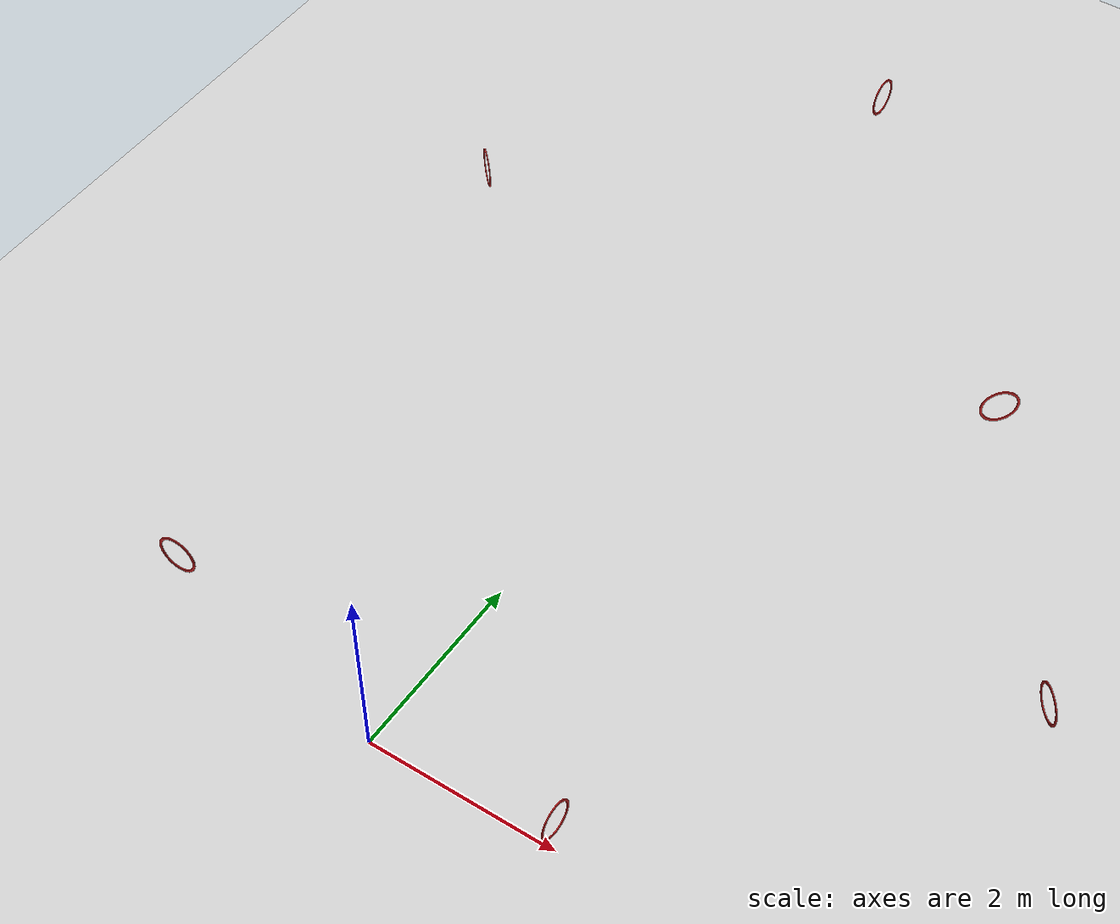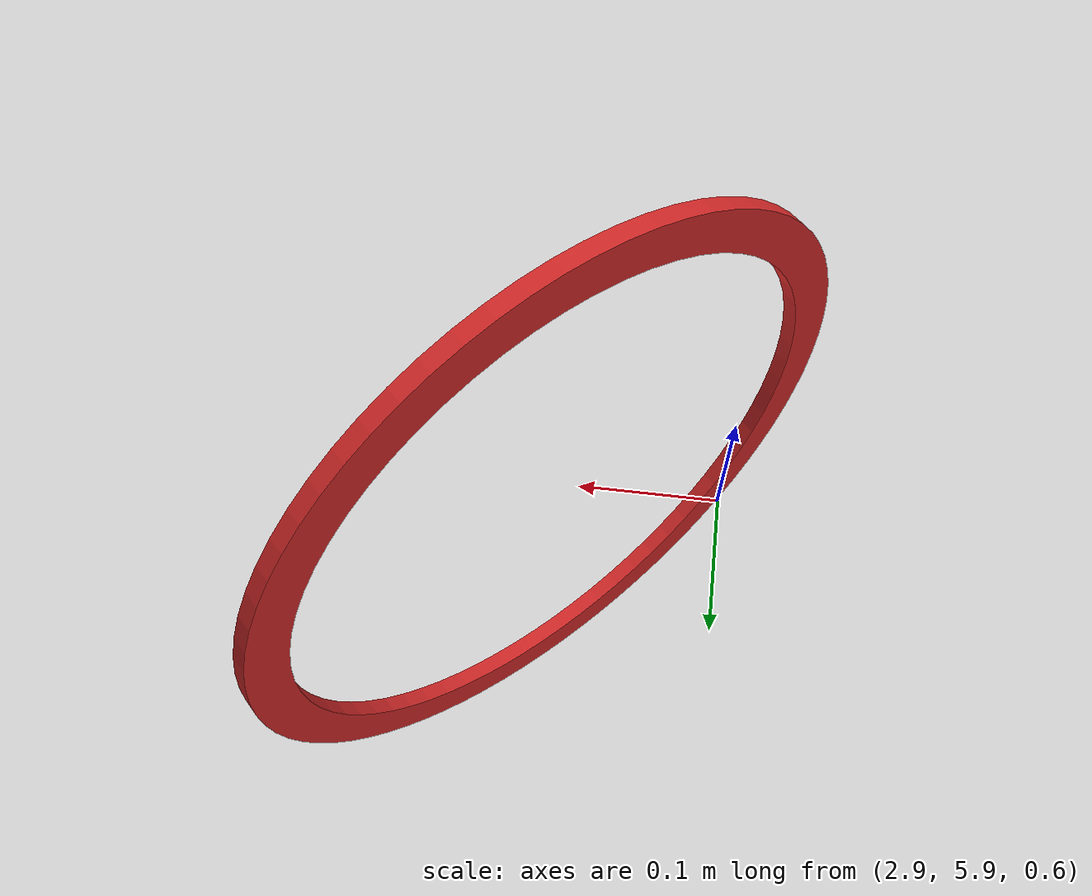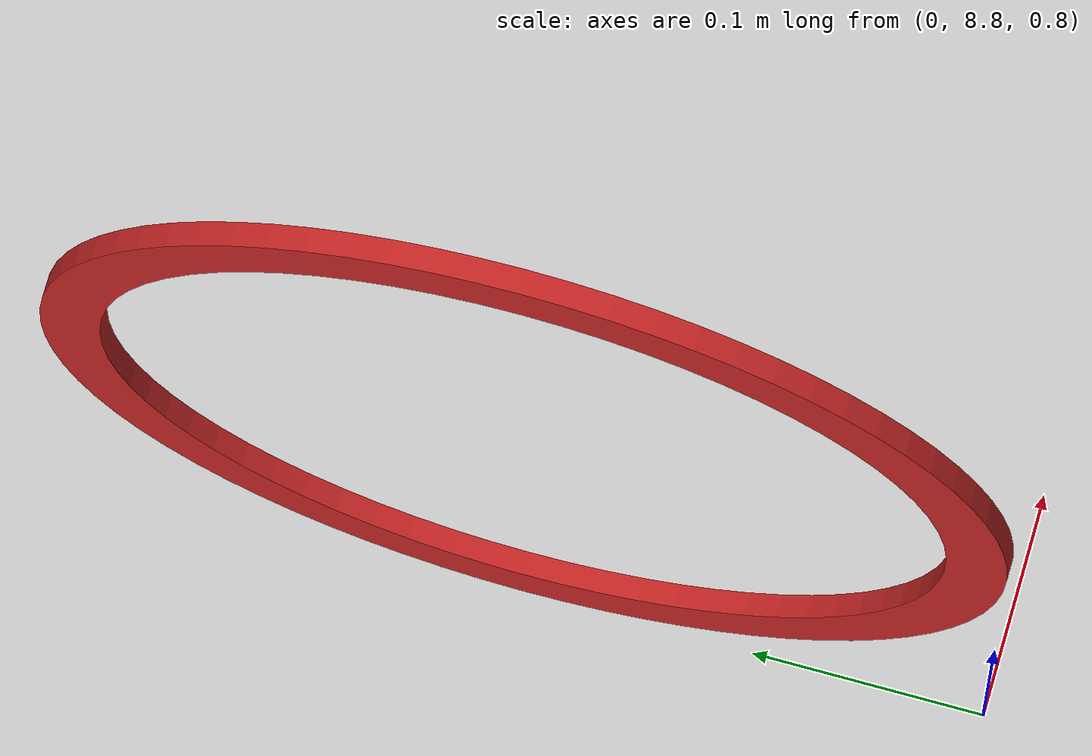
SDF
<?xml version="1.0"?>
<sdf version="1.4">
  <world name="default">
    <gui>
      <camera name="user_cam">
        <pose>-7.84 3.45 8.12 0 0.74 0</pose>
      </camera>
    </gui>

    <include>
      <uri>model://ground_plane</uri>
    </include>

    <include>
      <uri>model://sun</uri>
    </include>

    <include>
      <name>Gate_1</name>
      <pose>2 0 0.5 0 1.57 0</pose>
      <uri>model://gate</uri>
    </include>

    <include>
      <name>Gate_2</name>
      <pose>5 3 1 0 1.57 0.79</pose>
      <uri>model://gate</uri>
    </include>

    <include>
      <name>Gate_3</name>
      <pose>3 6 0.75 0 1.57 -0.79</pose>
      <uri>model://gate</uri>
    </include>

    <include>
      <name>Gate_4</name>
      <pose>0 9 1 0 1.57 0</pose>
      <uri>model://gate</uri>
    </include>

    <include>
      <name>Gate_5</name>
      <pose>-3 6 0.75 0 1.57 0.79</pose>
      <uri>model://gate</uri>
    </include>

    <include>
      <name>Gate_6</name>
      <pose>-2 0 1.25 0 1.57 1.57</pose>
      <uri>model://gate</uri>
    </include>
  </world>
</sdf>

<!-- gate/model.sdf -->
<sdf version="1.4">
  <model name="gate">
    <static>true</static>
    <link name="gate">
      <visual name="visual">
        <geometry>
          <mesh>
            <uri>model://gate/mesh/Gate.stl</uri>
            <scale>0.001 0.001 0.001</scale>
          </mesh>
        </geometry>
        <material>
          <script>
            <uri>file://media/materials/scripts/gazebo.material</uri>
            <name>Gazebo/Red</name>
          </script>
        </material>
      </visual>
      <collision name="collision">
        <geometry>
          <mesh>
            <uri>model://gate/mesh/Gate.stl</uri>
            <scale>0.001 0.001 0.001</scale>
          </mesh>
        </geometry>
      </collision>
    </link>
  </model>
</sdf>
